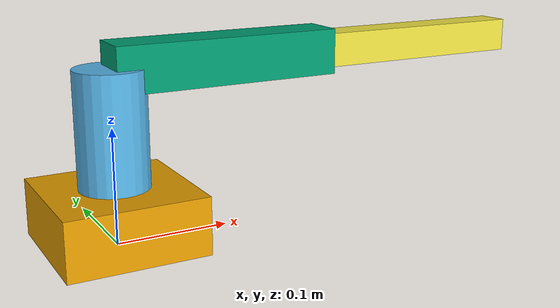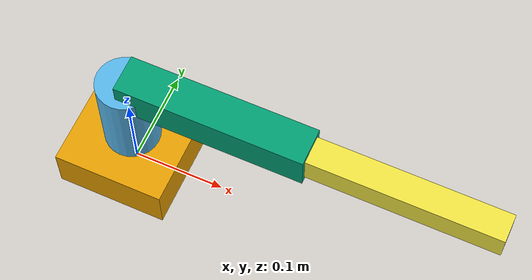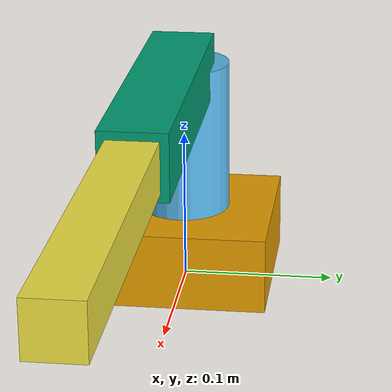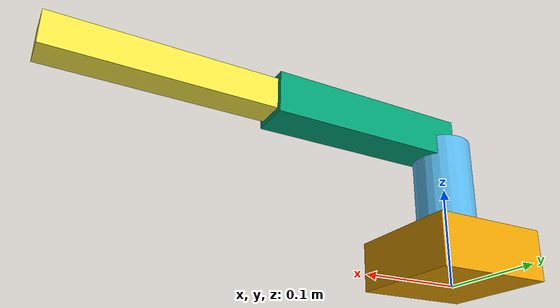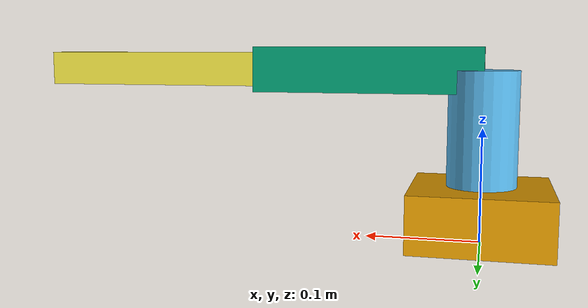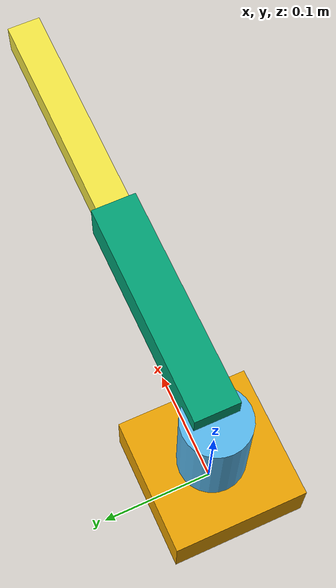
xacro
<?xml version="1.0"?>
<robot name="arm_2026" xmlns:xacro="http://www.ros.org/wiki/xacro">

  <link name="base_link">
    <visual>
      <origin xyz="0 0 0.025" rpy="0 0 0"/>
      <geometry>
        <box size="0.12 0.12 0.05"/>
      </geometry>
    </visual>
  </link>

  <link name="base_link_1">
    <visual>
      <origin xyz="0 0 0.05" rpy="0 0 0"/>
      <geometry>
        <cylinder radius="0.03" length="0.10"/>
      </geometry>
    </visual>
  </link>

  <link name="shoulder_link">
    <visual>
      <origin xyz="0.10 0 0" rpy="0 0 0"/>
      <geometry>
        <box size="0.20 0.04 0.04"/>
      </geometry>
    </visual>
  </link>

  <link name="elbow_link">
    <visual>
      <origin xyz="0.10 0 0" rpy="0 0 0"/>
      <geometry>
        <box size="0.20 0.03 0.03"/>
      </geometry>
    </visual>
  </link>

  <joint name="base_yaw" type="revolute">
    <parent link="base_link"/>
    <child link="base_link_1"/>
    <origin xyz="0 0 0.05" rpy="0 0 0"/>
    <axis xyz="0 0 1"/>
    <limit lower="-3.14" upper="3.14" effort="10" velocity="60.0"/>
  </joint>

  <joint name="shoulder_extension" type="revolute">
    <parent link="base_link_1"/>
    <child link="shoulder_link"/>
    <origin xyz="0 0 0.10" rpy="0 0 0"/>
    <axis xyz="0 1 0"/>
    <limit lower="-1.57" upper="1.57" effort="10" velocity="0.2"/>
  </joint>

  <joint name="elbow_extension" type="revolute">
    <parent link="shoulder_link"/>
    <child link="elbow_link"/>
    <origin xyz="0.20 0 0" rpy="0 0 0"/>
    <axis xyz="0 1 0"/>
    <limit lower="-1.57" upper="1.57" effort="10" velocity="0.2"/>
  </joint>

  <ros2_control name="Arm2026Hardware" type="system">
    <hardware>
      <plugin>arm_2026/Arm2026System</plugin>
    </hardware>

    <joint name="base_yaw">
      <command_interface name="position"/>
      <state_interface name="position"/>
    </joint>

    <joint name="shoulder_extension">
      <command_interface name="position"/>
      <state_interface name="position"/>
    </joint>

    <joint name="elbow_extension">
      <command_interface name="position"/>
      <state_interface name="position"/>
    </joint>
  </ros2_control>

</robot>
